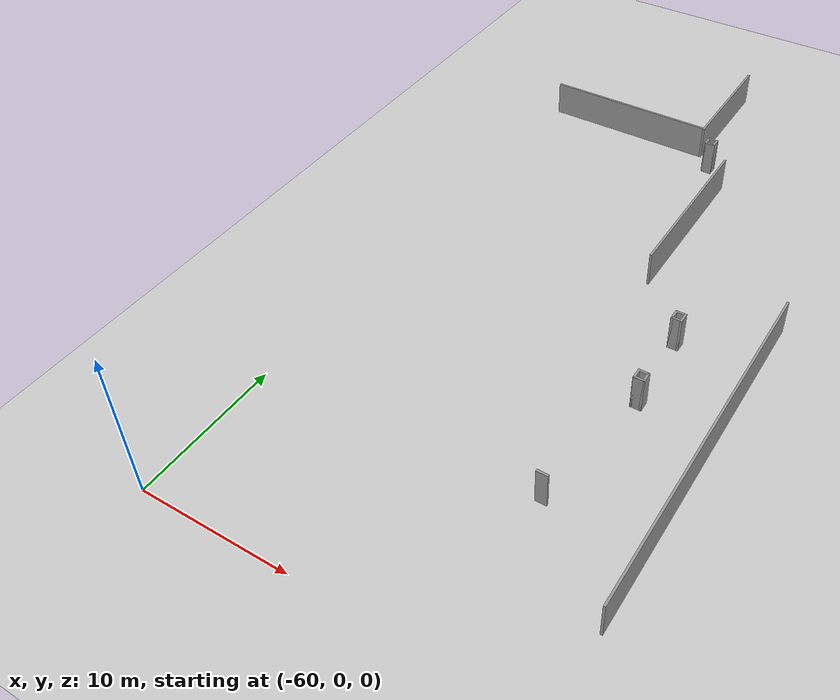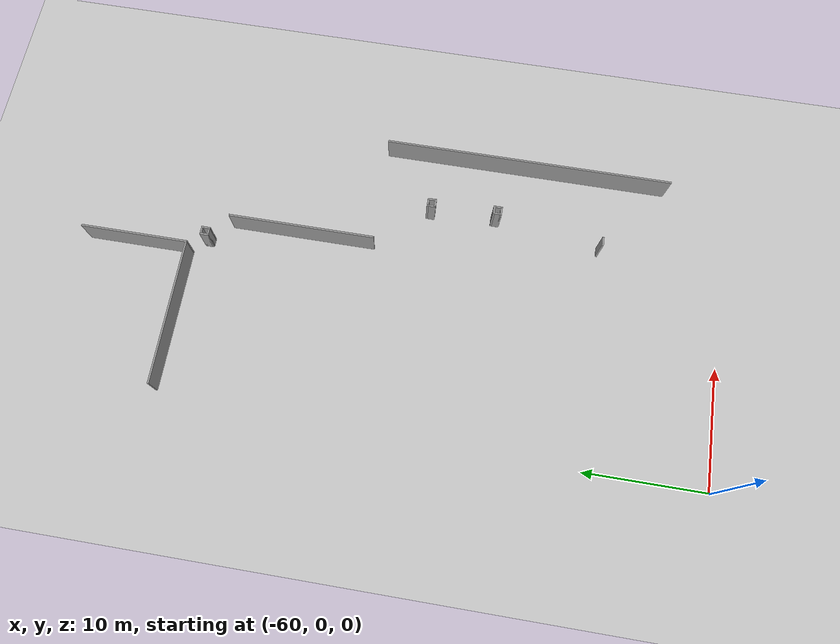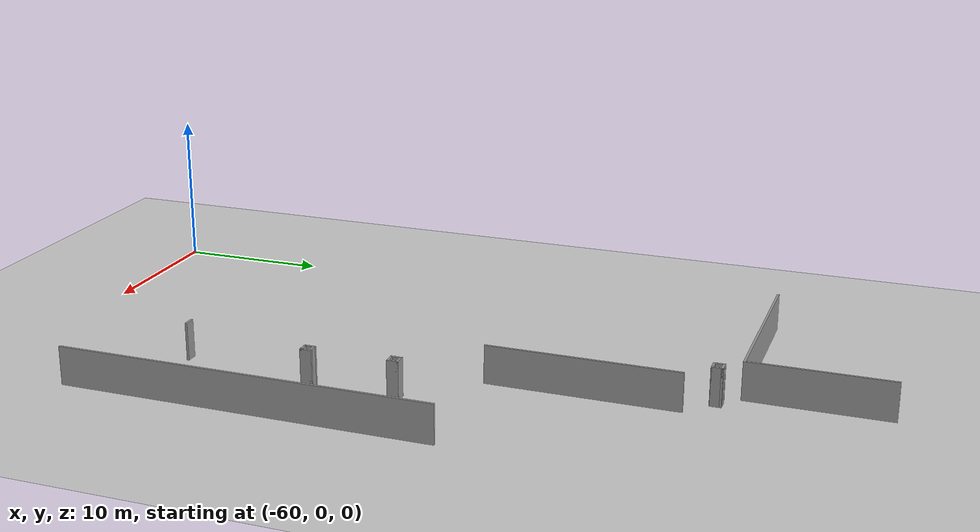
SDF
<sdf version="1.6">
 <world name="default">
  <model name="ground_plane">
   <static>1</static>
   <link name="link">
    <collision name="collision">
     <geometry><plane><normal>0 0 1</normal><size>300 300</size></plane></geometry>
     <surface>
      <contact><collide_bitmask>65535</collide_bitmask></contact>
      <friction><ode><mu>100</mu><mu2>50</mu2></ode></friction>
     </surface>
    </collision>
    <visual name="visual">
     <cast_shadows>0</cast_shadows>
     <geometry><plane><normal>0 0 1</normal><size>300 300</size></plane></geometry>
     <material>
      <script><uri>file://media/materials/scripts/gazebo.material</uri><name>Gazebo/Grey</name></script>
     </material>
    </visual>
   </link>
  </model>
  <model name="NIK">
   <pose>-0.005548 -3.7937 0 0 -0 0</pose>
   <link name="Wall_35">
    <collision name="Wall_35_Collision">
     <geometry><box><size>12.2 0.15 2.5</size></box></geometry>
     <pose>0 0 1.25 0 -0 0</pose>
    </collision>
    <visual name="Wall_35_Visual">
     <pose>0 0 1.25 0 -0 0</pose>
     <geometry><box><size>12.2 0.15 2.5</size></box></geometry>
     <material>
      <script><uri>file://media/materials/scripts/gazebo.material</uri><name>Gazebo/Grey</name></script>
      <ambient>1 1 1 1</ambient>
     </material>
     <meta><layer>0</layer></meta>
    </visual>
    <pose>-52.9937 48.1212 0 0 -0 -3.14159</pose>
   </link>
   <link name="Wall_489">
    <collision name="Wall_489_Collision">
     <geometry><box><size>0.75 0.15 2.5</size></box></geometry>
     <pose>0 0 1.25 0 -0 0</pose>
    </collision>
    <visual name="Wall_489_Visual">
     <pose>0 0 1.25 0 -0 0</pose>
     <geometry><box><size>0.75 0.15 2.5</size></box></geometry>
     <material>
      <script><uri>file://media/materials/scripts/gazebo.material</uri><name>Gazebo/Grey</name></script>
      <ambient>1 1 1 1</ambient>
     </material>
     <meta><layer>0</layer></meta>
    </visual>
    <pose>-46.1058 46.811 0 0 -0 -1.5708</pose>
   </link>
   <link name="Wall_490">
    <collision name="Wall_490_Collision">
     <geometry><box><size>0.75 0.15 2.5</size></box></geometry>
     <pose>0 0 1.25 0 -0 0</pose>
    </collision>
    <visual name="Wall_490_Visual">
     <pose>0 0 1.25 0 -0 0</pose>
     <geometry><box><size>0.75 0.15 2.5</size></box></geometry>
     <material>
      <script><uri>file://media/materials/scripts/gazebo.material</uri><name>Gazebo/Grey</name></script>
      <ambient>1 1 1 1</ambient>
     </material>
     <meta><layer>0</layer></meta>
    </visual>
    <pose>-45.8058 46.511 0 0 -0 0</pose>
   </link>
   <link name="Wall_491">
    <collision name="Wall_491_Collision">
     <geometry><box><size>0.75 0.15 2.5</size></box></geometry>
     <pose>0 0 1.25 0 -0 0</pose>
    </collision>
    <visual name="Wall_491_Visual">
     <pose>0 0 1.25 0 -0 0</pose>
     <geometry><box><size>0.75 0.15 2.5</size></box></geometry>
     <material>
      <script><uri>file://media/materials/scripts/gazebo.material</uri><name>Gazebo/Grey</name></script>
      <ambient>1 1 1 1</ambient>
     </material>
     <meta><layer>0</layer></meta>
    </visual>
    <pose>-45.5058 46.811 0 0 -0 1.5708</pose>
   </link>
   <link name="Wall_492">
    <collision name="Wall_492_Collision">
     <geometry><box><size>0.75 0.15 2.5</size></box></geometry>
     <pose>0 0 1.25 0 -0 0</pose>
    </collision>
    <visual name="Wall_492_Visual">
     <pose>0 0 1.25 0 -0 0</pose>
     <geometry><box><size>0.75 0.15 2.5</size></box></geometry>
     <material>
      <script><uri>file://media/materials/scripts/gazebo.material</uri><name>Gazebo/Grey</name></script>
      <ambient>1 1 1 1</ambient>
     </material>
     <meta><layer>0</layer></meta>
    </visual>
    <pose>-45.8058 47.111 0 0 -0 3.14159</pose>
   </link>
   <link name="Wall_494">
    <collision name="Wall_494_Collision">
     <geometry><box><size>0.75 0.15 2.5</size></box></geometry>
     <pose>0 0 1.25 0 -0 0</pose>
    </collision>
    <visual name="Wall_494_Visual">
     <pose>0 0 1.25 0 -0 0</pose>
     <geometry><box><size>0.75 0.15 2.5</size></box></geometry>
     <material>
      <script><uri>file://media/materials/scripts/gazebo.material</uri><name>Gazebo/Grey</name></script>
      <ambient>1 1 1 1</ambient>
     </material>
     <meta><layer>0</layer></meta>
    </visual>
    <pose>-40.4909 28.6823 0 0 -0 -1.5708</pose>
   </link>
   <link name="Wall_495">
    <collision name="Wall_495_Collision">
     <geometry><box><size>0.75 0.15 2.5</size></box></geometry>
     <pose>0 0 1.25 0 -0 0</pose>
    </collision>
    <visual name="Wall_495_Visual">
     <pose>0 0 1.25 0 -0 0</pose>
     <geometry><box><size>0.75 0.15 2.5</size></box></geometry>
     <material>
      <script><uri>file://media/materials/scripts/gazebo.material</uri><name>Gazebo/Grey</name></script>
      <ambient>1 1 1 1</ambient>
     </material>
     <meta><layer>0</layer></meta>
    </visual>
    <pose>-40.1909 28.3823 0 0 -0 0</pose>
   </link>
   <link name="Wall_496">
    <collision name="Wall_496_Collision">
     <geometry><box><size>0.75 0.15 2.5</size></box></geometry>
     <pose>0 0 1.25 0 -0 0</pose>
    </collision>
    <visual name="Wall_496_Visual">
     <pose>0 0 1.25 0 -0 0</pose>
     <geometry><box><size>0.75 0.15 2.5</size></box></geometry>
     <material>
      <script><uri>file://media/materials/scripts/gazebo.material</uri><name>Gazebo/Grey</name></script>
      <ambient>1 1 1 1</ambient>
     </material>
     <meta><layer>0</layer></meta>
    </visual>
    <pose>-39.8909 28.6823 0 0 -0 1.5708</pose>
   </link>
   <link name="Wall_497">
    <collision name="Wall_497_Collision">
     <geometry><box><size>0.75 0.15 2.5</size></box></geometry>
     <pose>0 0 1.25 0 -0 0</pose>
    </collision>
    <visual name="Wall_497_Visual">
     <pose>0 0 1.25 0 -0 0</pose>
     <geometry><box><size>0.75 0.15 2.5</size></box></geometry>
     <material>
      <script><uri>file://media/materials/scripts/gazebo.material</uri><name>Gazebo/Grey</name></script>
      <ambient>1 1 1 1</ambient>
     </material>
     <meta><layer>0</layer></meta>
    </visual>
    <pose>-40.1909 28.9823 0 0 -0 3.14159</pose>
   </link>
   <link name="Wall_499">
    <collision name="Wall_499_Collision">
     <geometry><box><size>0.75 0.15 2.5</size></box></geometry>
     <pose>0 0 1.25 0 -0 0</pose>
    </collision>
    <visual name="Wall_499_Visual">
     <pose>0 0 1.25 0 -0 0</pose>
     <geometry><box><size>0.75 0.15 2.5</size></box></geometry>
     <material>
      <script><uri>file://media/materials/scripts/gazebo.material</uri><name>Gazebo/Grey</name></script>
      <ambient>1 1 1 1</ambient>
     </material>
     <meta><layer>0</layer></meta>
    </visual>
    <pose>-40.2806 23.1318 0 0 -0 -1.5708</pose>
   </link>
   <link name="Wall_500">
    <collision name="Wall_500_Collision">
     <geometry><box><size>0.75 0.15 2.5</size></box></geometry>
     <pose>0 0 1.25 0 -0 0</pose>
    </collision>
    <visual name="Wall_500_Visual">
     <pose>0 0 1.25 0 -0 0</pose>
     <geometry><box><size>0.75 0.15 2.5</size></box></geometry>
     <material>
      <script><uri>file://media/materials/scripts/gazebo.material</uri><name>Gazebo/Grey</name></script>
      <ambient>1 1 1 1</ambient>
     </material>
     <meta><layer>0</layer></meta>
    </visual>
    <pose>-39.9806 22.8318 0 0 -0 0</pose>
   </link>
   <link name="Wall_501">
    <collision name="Wall_501_Collision">
     <geometry><box><size>0.75 0.15 2.5</size></box></geometry>
     <pose>0 0 1.25 0 -0 0</pose>
    </collision>
    <visual name="Wall_501_Visual">
     <pose>0 0 1.25 0 -0 0</pose>
     <geometry><box><size>0.75 0.15 2.5</size></box></geometry>
     <material>
      <script><uri>file://media/materials/scripts/gazebo.material</uri><name>Gazebo/Grey</name></script>
      <ambient>1 1 1 1</ambient>
     </material>
     <meta><layer>0</layer></meta>
    </visual>
    <pose>-39.6806 23.1318 0 0 -0 1.5708</pose>
   </link>
   <link name="Wall_502">
    <collision name="Wall_502_Collision">
     <geometry><box><size>0.75 0.15 2.5</size></box></geometry>
     <pose>0 0 1.25 0 -0 0</pose>
    </collision>
    <visual name="Wall_502_Visual">
     <pose>0 0 1.25 0 -0 0</pose>
     <geometry><box><size>0.75 0.15 2.5</size></box></geometry>
     <material>
      <script><uri>file://media/materials/scripts/gazebo.material</uri><name>Gazebo/Grey</name></script>
      <ambient>1 1 1 1</ambient>
     </material>
     <meta><layer>0</layer></meta>
    </visual>
    <pose>-39.9806 23.4318 0 0 -0 3.14159</pose>
   </link>
   <link name="Wall_507">
    <collision name="Wall_507_Collision">
     <geometry><box><size>0.75 0.15 2.5</size></box></geometry>
     <pose>0 0 1.25 0 -0 0</pose>
    </collision>
    <visual name="Wall_507_Visual">
     <pose>0 0 1.25 0 -0 0</pose>
     <geometry><box><size>0.75 0.15 2.5</size></box></geometry>
     <material>
      <script><uri>file://media/materials/scripts/gazebo.material</uri><name>Gazebo/Grey</name></script>
      <ambient>1 1 1 1</ambient>
     </material>
     <meta><layer>0</layer></meta>
    </visual>
    <pose>-41.3262 14.2229 0 0 -0 3.14159</pose>
   </link>
   <link name="Wall_7">
    <collision name="Wall_7_Collision">
     <geometry><box><size>9 0.15 2.5</size></box></geometry>
     <pose>0 0 1.25 0 -0 0</pose>
    </collision>
    <visual name="Wall_7_Visual">
     <pose>0 0 1.25 0 -0 0</pose>
     <geometry><box><size>9 0.15 2.5</size></box></geometry>
     <material>
      <script><uri>file://media/materials/scripts/gazebo.material</uri><name>Gazebo/Grey</name></script>
      <ambient>1 1 1 1</ambient>
     </material>
     <meta><layer>0</layer></meta>
    </visual>
    <pose>-46.9687 52.5462 0 0 -0 1.5708</pose>
   </link>
   <link name="Wall_84">
    <collision name="Wall_84_Collision">
     <geometry><box><size>12.25 0.15 2.5</size></box></geometry>
     <pose>0 0 1.25 0 -0 0</pose>
    </collision>
    <visual name="Wall_84_Visual">
     <pose>0 0 1.25 0 -0 0</pose>
     <geometry><box><size>12.25 0.15 2.5</size></box></geometry>
     <material>
      <script><uri>file://media/materials/scripts/gazebo.material</uri><name>Gazebo/Grey</name></script>
      <ambient>1 1 1 1</ambient>
     </material>
     <meta><layer>0</layer></meta>
    </visual>
    <pose>-44.0698 39.0565 0 0 -0 1.5708</pose>
   </link>
   <link name="Wall_94">
    <collision name="Wall_94_Collision">
     <geometry><box><size>24.25 0.15 2.5</size></box></geometry>
     <pose>0 0 1.25 0 -0 0</pose>
    </collision>
    <visual name="Wall_94_Visual">
     <pose>0 0 1.25 0 -0 0</pose>
     <geometry><box><size>24.25 0.15 2.5</size></box></geometry>
     <material>
      <script><uri>file://media/materials/scripts/gazebo.material</uri><name>Gazebo/Grey</name></script>
      <ambient>1 1 1 1</ambient>
     </material>
     <meta><layer>0</layer></meta>
    </visual>
    <pose>-35.0285 21.1056 0 0 -0 -1.5708</pose>
   </link>
   <static>1</static>
  </model>
 </world>
</sdf>
